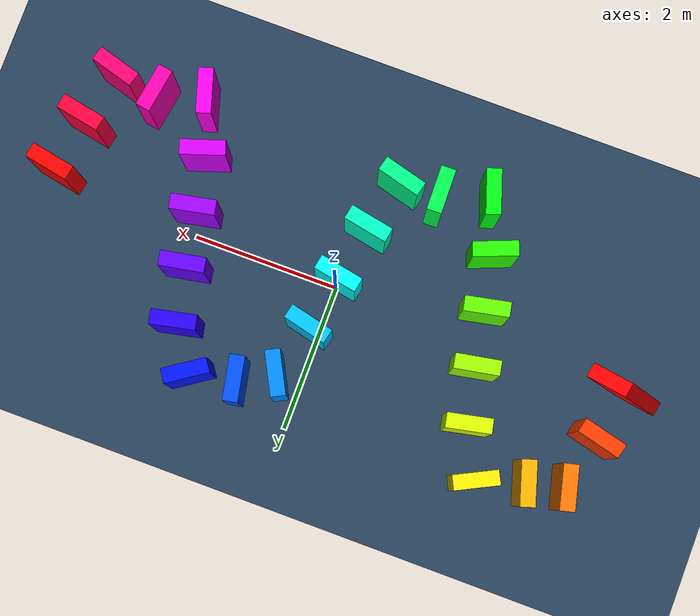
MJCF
<mujoco>
  <visual>
    <headlight diffuse="0.6 0.6 0.6" ambient="0.1 0.1 0.1" specular="0 0 0"/>
    <rgba haze="0.15 0.25 0.35 1"/>
    <global azimuth="120" elevation="-20"/>
  </visual>
  <asset>
    <texture type="skybox" builtin="gradient" rgb1="0.3 0.5 0.7" rgb2="0 0 0" width="512" height="3072"/>
    <texture type="2d" name="groundplane" builtin="checker" mark="edge" rgb1="0.2 0.3 0.4" rgb2="0.1 0.2 0.3" markrgb="0.8 0.8 0.8" width="300" height="300"/>
    <material name="groundplane" texture="groundplane" texuniform="true" texrepeat="5 5" reflectance="0.2"/>
  </asset>
  <worldbody>
    <light pos="0 0 1.5" dir="0 0 -1" directional="true"/>
    <geom name="floor" size="0 0 0.05" type="plane" material="groundplane"/>
    <body name="trigger" pos="-4.0000 0.0000 0.5767" euler="0 28.0 79.3">
      <geom type="box" size="0.1000 0.3000 0.6000" rgba="1.000 0.000 0.000 1"/>
      <freejoint/>
    </body>
    <body name="domino_001" pos="-3.8612 0.7370 0.6000" euler="0 0.0 76.0">
      <geom type="box" size="0.1000 0.3000 0.6000" rgba="1.000 0.231 0.000 1"/>
      <freejoint/>
    </body>
    <body name="domino_002" pos="-3.6794 1.4642 0.6000" euler="0 0.0 14.1">
      <geom type="box" size="0.1000 0.3000 0.6000" rgba="1.000 0.462 0.000 1"/>
      <freejoint/>
    </body>
    <body name="domino_003" pos="-3.1801 1.5900 0.6000" euler="0 0.0 17.0">
      <geom type="box" size="0.1000 0.3000 0.6000" rgba="1.000 0.692 0.000 1"/>
      <freejoint/>
    </body>
    <body name="domino_004" pos="-2.5504 1.7821 0.6000" euler="0 0.0 -63.3">
      <geom type="box" size="0.1000 0.3000 0.6000" rgba="1.000 0.923 0.000 1"/>
      <freejoint/>
    </body>
    <body name="domino_005" pos="-2.2276 1.1391 0.6000" euler="0 0.0 -78.2">
      <geom type="box" size="0.1000 0.3000 0.6000" rgba="0.846 1.000 0.000 1"/>
      <freejoint/>
    </body>
    <body name="domino_006" pos="-2.0744 0.4050 0.6000" euler="0 0.0 -79.6">
      <geom type="box" size="0.1000 0.3000 0.6000" rgba="0.615 1.000 0.000 1"/>
      <freejoint/>
    </body>
    <body name="domino_007" pos="-1.9391 -0.3327 0.6000" euler="0 0.0 -78.5">
      <geom type="box" size="0.1000 0.3000 0.6000" rgba="0.385 1.000 0.000 1"/>
      <freejoint/>
    </body>
    <body name="domino_008" pos="-1.7896 -1.0676 0.6000" euler="0 0.0 -68.4">
      <geom type="box" size="0.1000 0.3000 0.6000" rgba="0.154 1.000 0.000 1"/>
      <freejoint/>
    </body>
    <body name="domino_009" pos="-1.5173 -1.7565 0.6000" euler="0 0.0 18.4">
      <geom type="box" size="0.1000 0.3000 0.6000" rgba="0.000 1.000 0.077 1"/>
      <freejoint/>
    </body>
    <body name="domino_010" pos="-0.8774 -1.5442 0.6000" euler="0 0.0 1.2">
      <geom type="box" size="0.1000 0.3000 0.6000" rgba="0.000 1.000 0.308 1"/>
      <freejoint/>
    </body>
    <body name="domino_011" pos="-0.3459 -1.5332 0.6000" euler="0 0.0 75.1">
      <geom type="box" size="0.1000 0.3000 0.6000" rgba="0.000 1.000 0.538 1"/>
      <freejoint/>
    </body>
    <body name="domino_012" pos="-0.1536 -0.8091 0.6000" euler="0 0.0 79.2">
      <geom type="box" size="0.1000 0.3000 0.6000" rgba="0.000 1.000 0.769 1"/>
      <freejoint/>
    </body>
    <body name="domino_013" pos="-0.0132 -0.0724 0.6000" euler="0 0.0 79.4">
      <geom type="box" size="0.1000 0.3000 0.6000" rgba="0.000 1.000 1.000 1"/>
      <freejoint/>
    </body>
    <body name="domino_014" pos="0.1244 0.6649 0.6000" euler="0 0.0 76.6">
      <geom type="box" size="0.1000 0.3000 0.6000" rgba="0.000 0.769 1.000 1"/>
      <freejoint/>
    </body>
    <body name="domino_015" pos="0.2976 1.3943 0.6000" euler="0 0.0 27.7">
      <geom type="box" size="0.1000 0.3000 0.6000" rgba="0.000 0.538 1.000 1"/>
      <freejoint/>
    </body>
    <body name="domino_016" pos="0.7664 1.6404 0.6000" euler="0 0.0 11.3">
      <geom type="box" size="0.1000 0.3000 0.6000" rgba="0.000 0.308 1.000 1"/>
      <freejoint/>
    </body>
    <body name="domino_017" pos="1.3795 1.7630 0.6000" euler="0 0.0 -55.8">
      <geom type="box" size="0.1000 0.3000 0.6000" rgba="0.000 0.077 1.000 1"/>
      <freejoint/>
    </body>
    <body name="domino_018" pos="1.7544 1.2104 0.6000" euler="0 0.0 -77.9">
      <geom type="box" size="0.1000 0.3000 0.6000" rgba="0.154 0.000 1.000 1"/>
      <freejoint/>
    </body>
    <body name="domino_019" pos="1.9120 0.4773 0.6000" euler="0 0.0 -79.6">
      <geom type="box" size="0.1000 0.3000 0.6000" rgba="0.385 0.000 1.000 1"/>
      <freejoint/>
    </body>
    <body name="domino_020" pos="2.0476 -0.2604 0.6000" euler="0 0.0 -78.7">
      <geom type="box" size="0.1000 0.3000 0.6000" rgba="0.615 0.000 1.000 1"/>
      <freejoint/>
    </body>
    <body name="domino_021" pos="2.1940 -0.9959 0.6000" euler="0 0.0 -71.4">
      <geom type="box" size="0.1000 0.3000 0.6000" rgba="0.846 0.000 1.000 1"/>
      <freejoint/>
    </body>
    <body name="domino_022" pos="2.4325 -1.7030 0.6000" euler="0 0.0 17.2">
      <geom type="box" size="0.1000 0.3000 0.6000" rgba="1.000 0.000 0.923 1"/>
      <freejoint/>
    </body>
    <body name="domino_023" pos="3.0576 -1.5101 0.6000" euler="0 0.0 -9.1">
      <geom type="box" size="0.1000 0.3000 0.6000" rgba="1.000 0.000 0.692 1"/>
      <freejoint/>
    </body>
    <body name="domino_024" pos="3.6253 -1.6009 0.6000" euler="0 0.0 74.0">
      <geom type="box" size="0.1000 0.3000 0.6000" rgba="1.000 0.000 0.462 1"/>
      <freejoint/>
    </body>
    <body name="domino_025" pos="3.8312 -0.8810 0.6000" euler="0 0.0 79.1">
      <geom type="box" size="0.1000 0.3000 0.6000" rgba="1.000 0.000 0.231 1"/>
      <freejoint/>
    </body>
    <body name="domino_026" pos="3.9736 -0.1447 0.6000" euler="0 0.0 79.1">
      <geom type="box" size="0.1000 0.3000 0.6000" rgba="1.000 0.000 0.000 1"/>
      <freejoint/>
    </body>
  </worldbody>
</mujoco>
